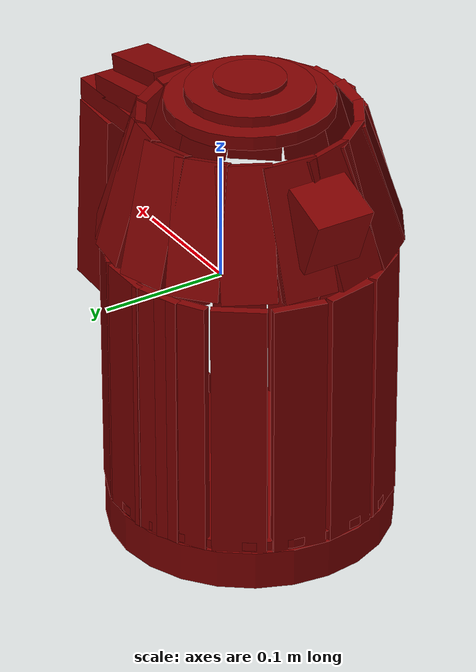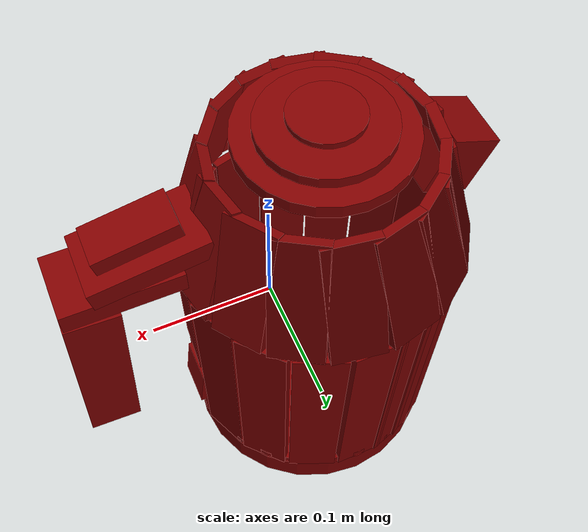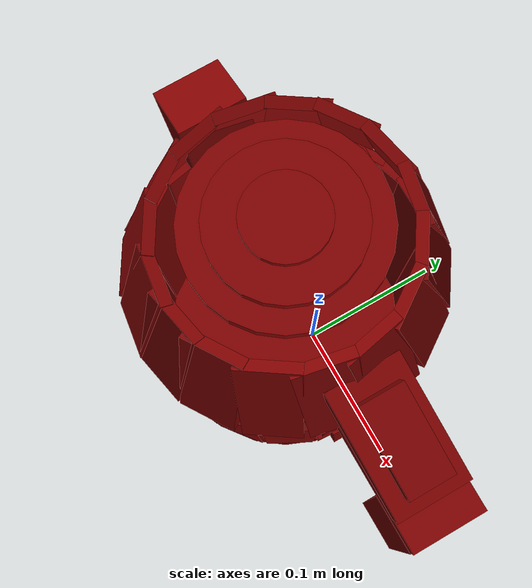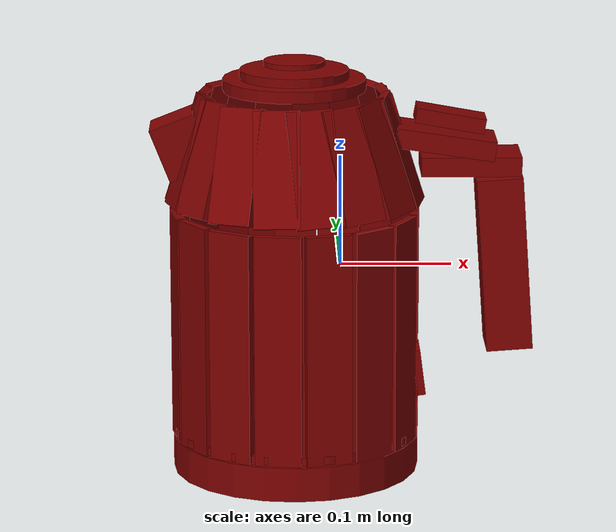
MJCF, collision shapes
<?xml version='1.0' encoding='UTF-8'?>
<mujoco model="model">
  <option timestep="0.002" gravity="0.0 0.0 -9.81"/>
  <compiler angle="radian"/>
  <asset>
    <mesh file="visuals/button_lid.obj" name="button_lid_vis"/>
    <mesh file="visuals/Body001.obj" name="Body001_vis"/>
    <mesh file="visuals/kettle_main.obj" name="kettle_main_vis"/>
    <mesh file="visuals/lid.obj" name="lid_vis"/>
    <mesh file="visuals/switch.obj" name="switch_vis"/>
    <texture file="visuals/T_BC001.png" name="Body001_material" type="2d"/>
    <material name="Body001_material" rgba="1 1 1 1.0" texture="Body001_material" shininess="0.2512328028678894" specular="0.3103448502657381"/>
    <texture file="visuals/T_BC001.png" name="kettle_main_material" type="2d"/>
    <material name="kettle_main_material" rgba="1 1 1 1.0" texture="kettle_main_material" shininess="0.2512328028678894" specular="0.3103448502657381"/>
    <texture file="visuals/T_BC001.png" name="button_lid_material" type="2d"/>
    <material name="button_lid_material" rgba="1 1 1 1.0" texture="button_lid_material" shininess="0.2512328028678894" specular="0.3103448502657381"/>
    <texture file="visuals/T_BC001.png" name="lid_material" type="2d"/>
    <material name="lid_material" rgba="1 1 1 1.0" texture="lid_material" shininess="0.2512328028678894" specular="0.3103448502657381"/>
    <texture file="visuals/T_BC001.png" name="switch_material" type="2d"/>
    <material name="switch_material" rgba="1 1 1 1.0" texture="switch_material" shininess="0.2512328028678894" specular="0.3103448502657381"/>
  </asset>
  <default>
    <default class="visual">
      <geom conaffinity="0" contype="0" group="1" type="mesh"/>
    </default>
    <default class="collision">
      <geom group="0" rgba="0.5 0 0 0.5"/>
    </default>
    <default class="spawn">
      <geom group="0" rgba="1 1 1 0.5" contype="0" conaffinity="0"/>
      <site group="0" rgba="1 1 1 0.5"/>
    </default>
    <default class="region">
      <geom group="1" conaffinity="0" contype="0" rgba="0 1 0 0" mass="0"/>
    </default>
  </default>
  <worldbody>
    <body>
      <body name="object">
        <geom mesh="Body001_vis" type="mesh" solimp="0.998 0.998 0.001" solref="0.001 1" friction="0.95 0.3 0.1" class="visual" material="Body001_material"/>
        <geom type="cylinder" pos="-0.04088974 0.00000970 -0.17252803" size="0.11124438792467117 0.015558336861431599" quat="0.7071068286895752 0.0 0.0 0.7071067690849304" class="collision"/>
        <body name="kettle_main">
          <geom mesh="kettle_main_vis" type="mesh" solimp="0.998 0.998 0.001" solref="0.001 1" friction="0.95 0.3 0.1" class="visual" material="kettle_main_material"/>
          <geom type="box" pos="-0.04088973 0.10701322 -0.05156071" size="0.020732257515192032 0.0035313626285642385 0.10418971627950668" quat="1.0 0.0 0.0 0.0" class="collision"/>
          <geom type="box" pos="-0.04088973 0.10701322 -0.05156071" size="0.020732257515192032 0.0035313626285642385 0.10418971627950668" quat="1.0 0.0 0.0 0.0" class="collision"/>
          <geom type="box" pos="0.00153995 0.09824144 -0.05156071" size="0.0035313607659190893 0.020732255652546883 0.10418971627950668" quat="0.8356213569641113 0.0 0.0 0.5493058562278748" class="collision"/>
          <geom type="box" pos="0.03703261 0.07334362 -0.05156071" size="0.003531360998749733 0.020732257515192032 0.10418971627950668" quat="0.9295758008956909 0.0 0.0 0.368630975484848" class="collision"/>
          <geom type="box" pos="0.05973274 0.03705873 -0.05156070" size="0.003531360998749733 0.020732255652546883 0.10418973118066788" quat="0.9783125519752502 0.0 0.0 0.20713411271572113" class="collision"/>
          <geom type="box" pos="0.06635232 -0.00776355 -0.14284416" size="0.003531360998749733 0.020732257515192032 0.01290628407150507" quat="0.999381422996521 0.0 0.0 -0.03516842797398567" class="collision"/>
          <geom type="box" pos="0.05371923 -0.05032695 -0.05156071" size="0.003531360998749733 0.020732257515192032 0.10418971627950668" quat="0.9701465368270874 0.0 0.0 -0.2425195872783661" class="collision"/>
          <geom type="box" pos="0.02601363 -0.08363794 -0.05156071" size="0.003531360998749733 0.020732257515192032 0.10418971627950668" quat="0.9009568095207214 0.0 0.0 -0.4339088201522827" class="collision"/>
          <geom type="box" pos="-0.01265681 -0.10323965 -0.05156071" size="0.003531360998749733 0.020732257515192032 0.10418971627950668" quat="0.7943715453147888 0.0 0.0 -0.6074321866035461" class="collision"/>
          <geom type="box" pos="-0.05680384 -0.10575987 -0.05156071" size="0.003531360998749733 0.020732257515192032 0.10418971627950668" quat="0.6517195105552673 0.0 -0.0 -0.7584600448608398" class="collision"/>
          <geom type="box" pos="-0.09801992 -0.09094475 -0.05156071" size="0.003531360998749733 0.020732257515192032 0.10418971627950668" quat="0.48403555154800415 0.0 -0.0 -0.8750483393669128" class="collision"/>
          <geom type="box" pos="-0.12943818 -0.06005627 -0.05156071" size="0.003531360998749733 0.020732257515192032 0.10418971627950668" quat="0.29274100065231323 0.0 -0.0 -0.9561917781829834" class="collision"/>
          <geom type="box" pos="-0.14592336 -0.01998806 -0.05156071" size="0.0035313612315803766 0.02073225937783718 0.10418971627950668" quat="0.09309259057044983 0.0 -0.0 -0.9956574440002441" class="collision"/>
          <geom type="box" pos="-0.14516284 0.02336000 -0.05156071" size="0.003531360998749733 0.020732257515192032 0.10418971627950668" quat="0.11054379492998123 0.0 0.0 0.99387127161026" class="collision"/>
          <geom type="box" pos="-0.12674281 0.06355965 -0.05156071" size="0.0035313612315803766 0.02073225937783718 0.10418971627950668" quat="0.31351524591445923 0.0 0.0 0.9495831727981567" class="collision"/>
          <geom type="box" pos="-0.09437106 0.09306093 -0.05156071" size="0.0035313607659190893 0.020732255652546883 0.10418971627950668" quat="0.4998989999294281 0.0 0.0 0.8660836815834045" class="collision"/>
          <geom type="box" pos="-0.07454212 0.10196567 -0.05156071" size="0.003531360998749733 0.020732257515192032 0.10418971627950668" quat="0.585281491279602 0.0 0.0 0.8108301758766174" class="collision"/>
          <geom type="box" pos="0.06635233 -0.00776355 -0.00671871" size="0.003531360998749733 0.020732257515192032 0.05934770777821541" quat="0.999381422996521 0.0 0.0 -0.03516842797398567" class="collision"/>
          <geom class="collision" type="box" pos="0.11620237 0.00000969 0.09483030" size="0.04474826902151108 0.02653958648443222 0.00876293983310461" quat="1.0 0.0 0.0 0.0" name="handle_1"/>
          <geom class="collision" type="box" pos="0.14671671 0.00000969 0.00441366" size="0.026539616286754608 0.02080962248146534 0.07887310534715652" quat="0.7067153453826904 -0.02352476492524147 -0.02352476678788662 0.7067153453826904" name="handle_main"/>
          <geom type="box" pos="-0.05687099 -0.09396544 0.10908151" size="0.003977437969297171 0.020732255652546883 0.05129411444067955" quat="0.6439078450202942 -0.10060315579175949 -0.11708022654056549 -0.7493690252304077" class="collision"/>
          <geom type="box" pos="-0.09193143 -0.08049785 0.10908145" size="0.003977437969297171 0.020732253789901733 0.05129411071538925" quat="0.48366251587867737 -0.12169675529003143 -0.09496693313121796 -0.8615345358848572" class="collision"/>
          <geom type="box" pos="-0.11965933 -0.05367526 0.10908145" size="0.003977437969297171 0.020732251927256584 0.05129410699009895" quat="0.29932263493537903 -0.13839606940746307 -0.06837660819292068 -0.9415822625160217" class="collision"/>
          <geom type="box" pos="-0.13399474 -0.02043977 0.10908151" size="0.003977437969297171 0.020732257515192032 0.05129411444067955" quat="0.1151157096028328 -0.14886033535003662 -0.04085797071456909 -0.9812846779823303" class="collision"/>
          <geom type="box" pos="-0.13466726 0.01711230 0.10908145" size="0.003977437969297171 0.020732248201966286 0.05129410699009895" quat="0.08045467734336853 0.1539924293756485 0.010731582529842854 0.9847325682640076" class="collision"/>
          <geom type="box" pos="-0.12020913 0.05287893 0.10908145" size="0.003977437969297171 0.020732250064611435 0.051294099539518356" quat="0.2780543267726898 0.1529783308506012 -0.020651372149586678 0.9480806589126587" class="collision"/>
          <geom type="box" pos="-0.09507081 0.07843887 0.10908151" size="0.003977437969297171 0.020732255652546883 0.05129411444067955" quat="0.45137497782707214 0.14636589586734772 -0.04904959723353386 0.8788809776306152" class="collision"/>
          <geom type="box" pos="-0.06056952 0.09328042 0.10908145" size="0.003977437969297171 0.020732251927256584 0.05129410699009895" quat="0.615670382976532 0.13383470475673676 -0.0769226998090744 0.772736132144928" class="collision"/>
          <geom type="box" pos="-0.02199152 0.09344192 0.10908145" size="0.003977437969297171 0.020732253789901733 0.05129410699009895" quat="0.7592993974685669 0.11550059914588928 -0.10241339355707169 0.6321672797203064" class="collision"/>
          <geom type="box" pos="0.01238178 0.07905948 0.10908151" size="0.003977437969297171 0.020732255652546883 0.05129411444067955" quat="0.8682090640068054 0.09325709939002991 -0.12301197648048401 0.4715763032436371" class="collision"/>
          <geom type="box" pos="0.03878241 0.05234586 0.10908145" size="0.003977437969297171 0.020732250064611435 0.05129410699009895" quat="0.9440962076187134 0.06719603389501572 -0.13897311687469482 0.2912962734699249" class="collision"/>
          <geom type="box" pos="0.05300035 0.01648310 0.10908145" size="0.003977438434958458 0.020732251927256584 0.05129410699009895" quat="0.9835100173950195 0.03768429160118103 -0.14969566464424133 0.09422940760850906" class="collision"/>
          <geom type="box" pos="0.05207895 -0.02105089 0.10908151" size="0.003977437969297171 0.020732253789901733 0.05129411444067955" quat="0.9828066229820251 0.00746604148298502 -0.1541852504014969 -0.1013031005859375" class="collision"/>
          <geom type="box" pos="0.03672742 -0.05532835 0.10908145" size="0.003977438434958458 0.020732250064611435 0.051294099539518356" quat="0.9435896873474121 -0.02305513620376587 -0.15263450145721436 -0.29293292760849" class="collision"/>
          <geom type="box" pos="0.00843872 -0.08155882 0.10908145" size="0.003977437969297171 0.020732251927256584 0.05129410699009895" quat="0.864793598651886 -0.05346410349011421 -0.14481158554553986 -0.47781088948249817" class="collision"/>
          <geom type="box" pos="-0.02433717 -0.09386650 0.10908145" size="0.003977437503635883 0.020732250064611435 0.05129410699009895" quat="0.7623418569564819 -0.07914788275957108 -0.13253068923950195 -0.6284950971603394" class="collision"/>
          <geom type="box" pos="-0.14139876 0.00000970 0.11245653" size="0.023766638711094856 0.02080962248146534 0.024814028292894363" quat="0.6947651505470276 -0.1315348893404007 -0.1315348744392395 0.6947650909423828" class="collision"/>
          <geom class="collision" type="box" pos="0.09339941 0.00000969 0.11490469" size="0.026539601385593414 0.04474828392267227 0.008762944489717484" quat="0.7051696181297302 0.052305132150650024 0.05230513587594032 0.7051695585250854" name="handle_2"/>
          <geom type="cylinder" pos="-0.04088974 0.00000970 -0.15097396" size="0.11124438792467117 0.0036440379917621613" quat="0.7071068286895752 0.0 0.0 0.7071067690849304" class="collision"/>
          <body name="button_lid">
            <joint axis="0.0 0.0 -1.0" pos="0.10462500 0.00000279 0.13733089" limited="true" name="button_lid_joint" range="0.0 0.004" type="slide" damping="100" frictionloss="1" armature=".01" stiffness="1" springref="-0.5"/>
            <geom mesh="button_lid_vis" type="mesh" solimp="0.998 0.998 0.001" solref="0.001 1" friction="0.95 0.3 0.1" class="visual" material="button_lid_material"/>
            <geom class="collision" type="box" pos="0.09766245 0.00048437 0.13435811" size="0.016185544431209564 0.031404461711645126 0.006680401507765055" quat="0.7043230533599854 0.06268153339624405 0.06268154829740524 0.7043231725692749" name="button_lid_main"/>
          </body>
          <body name="lid">
            <joint axis="0.0 1.0 0.0" pos="0.03631870 0.00000038 0.15721738" limited="true" name="lid_joint" range="0.0 1.5707963267948966" type="hinge" damping="1" frictionloss="1" armature=".01" stiffness="0.05"/>
            <geom mesh="lid_vis" type="mesh" solimp="0.998 0.998 0.001" solref="0.001 1" friction="0.95 0.3 0.1" class="visual" material="lid_material"/>
            <geom class="collision" type="cylinder" pos="-0.04088974 0.00000970 0.16603878" size="0.0638863667845726 0.005286297760903835" quat="1.0 0.0 0.0 0.0" name="lid_main"/>
            <geom class="collision" type="cylinder" pos="-0.04088974 0.00000970 0.17554356" size="0.04869084432721138 0.004028938245028257" quat="1.0 0.0 0.0 0.0" name="lid_1"/>
            <geom class="collision" type="cylinder" pos="-0.04088974 0.00000970 0.18516879" size="0.027325695380568504 0.0022610723972320557" quat="1.0 0.0 0.0 0.0" name="lid_2"/>
          </body>
          <body name="switch">
            <joint axis="0.0 1.0 0.0" pos="0.07133611 0.00000034 -0.09759223" limited="true" name="switch_joint" range="0.0 0.22689280275926282" type="hinge" damping="1" frictionloss="1" armature=".01" stiffness="0.05"/>
            <geom mesh="switch_vis" type="mesh" solimp="0.998 0.998 0.001" solref="0.001 1" friction="0.95 0.3 0.1" class="visual" material="switch_material"/>
            <geom class="collision" type="box" pos="0.07073595 0.00000969 -0.09779774" size="0.018760845065116882 0.0036192922852933407 0.02099692076444626" quat="0.705668032169342 -0.045084889978170395 -0.04508490115404129 0.705668032169342" name="switch_main"/>
          </body>
        </body>
        <geom class="region" name="reg_main" type="box" pos="0.0 2.3000000000002185e-05 9.999999994736442e-09" size="0.17513573 0.11251412 0.19039951"/>
      </body>
    </body>
  </worldbody>
  <actuator>
    <motor name="button_lid_joint_actuator" joint="button_lid_joint" gear="50"/>
    <motor name="lid_joint_actuator" joint="lid_joint" gear="0.5"/>
    <motor name="switch_joint_actuator" joint="switch_joint" gear="50"/>
  </actuator>
</mujoco>
